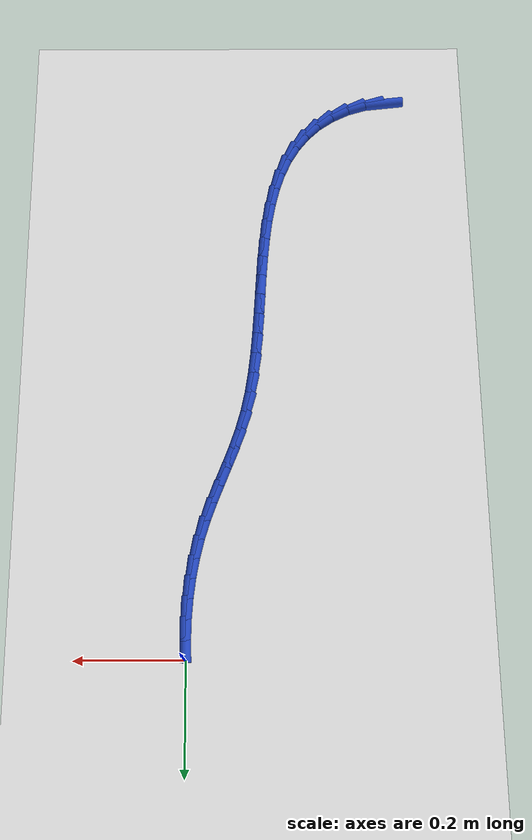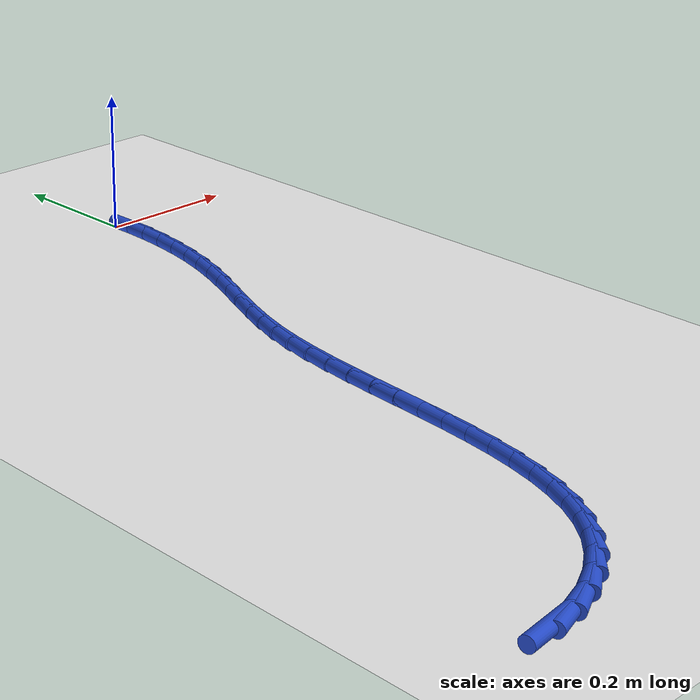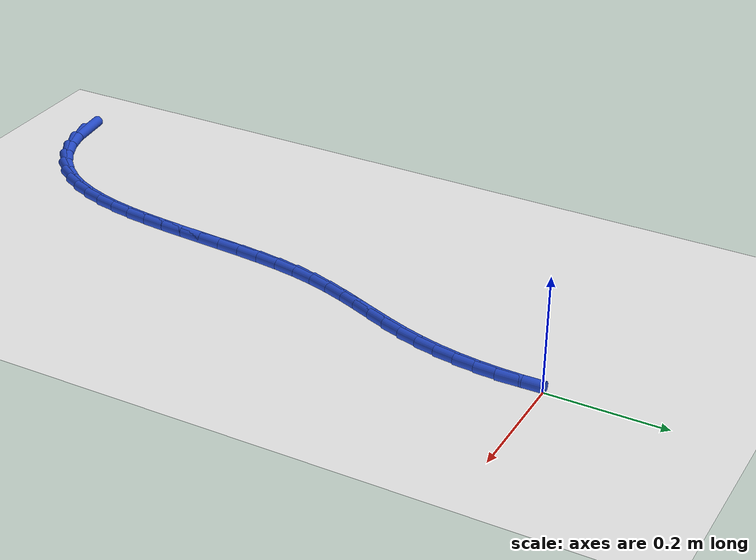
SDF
<sdf version="1.6">
 <world name="default">
  <model name="ground_plane">
   <static>1</static>
   <link name="link">
    <collision name="collision">
     <geometry><plane><normal>0 0 1</normal><size>100 100</size></plane></geometry>
     <surface><friction><ode><mu>100</mu><mu2>50</mu2></ode></friction></surface>
    </collision>
    <visual name="visual">
     <cast_shadows>0</cast_shadows>
     <geometry><plane><normal>0 0 1</normal><size>100 100</size></plane></geometry>
     <material>
      <script><uri>file://media/materials/scripts/gazebo.material</uri><name>Gazebo/WhiteGlow</name></script>
     </material>
    </visual>
   </link>
  </model>
  <model name="line">
   <link name="link_236">
    <pose>-0.39205179487891645 -1.1144672736299832 0.01 0 1.57 0.10989551636319063</pose>
    <collision name="collision">
     <geometry><cylinder><radius>0.01</radius><length>0.08</length></cylinder></geometry>
    </collision>
    <visual name="visual">
     <material>
      <script><name>Gazebo/Blue</name><uri>file://media/materials/scripts/gazebo.material</uri></script>
     </material>
     <geometry><cylinder><radius>0.01</radius><length>0.08</length></cylinder></geometry>
    </visual>
   </link>
   <link name="link_237">
    <pose>-0.3546578661381277 -1.1103412250032278 0.01 0 1.57 0.29479839669105695</pose>
    <collision name="collision">
     <geometry><cylinder><radius>0.01</radius><length>0.08</length></cylinder></geometry>
    </collision>
    <visual name="visual">
     <material>
      <script><name>Gazebo/Blue</name><uri>file://media/materials/scripts/gazebo.material</uri></script>
     </material>
     <geometry><cylinder><radius>0.01</radius><length>0.08</length></cylinder></geometry>
    </visual>
   </link>
   <link name="link_238">
    <pose>-0.3184992203152216 -1.0993617962897582 0.01 0 1.57 0.4531646331320332</pose>
    <collision name="collision">
     <geometry><cylinder><radius>0.01</radius><length>0.08</length></cylinder></geometry>
    </collision>
    <visual name="visual">
     <material>
      <script><name>Gazebo/Blue</name><uri>file://media/materials/scripts/gazebo.material</uri></script>
     </material>
     <geometry><cylinder><radius>0.01</radius><length>0.08</length></cylinder></geometry>
    </visual>
   </link>
   <link name="link_239">
    <pose>-0.2852480133200984 -1.0831696512039333 0.01 0 1.57 0.6033523680299203</pose>
    <collision name="collision">
     <geometry><cylinder><radius>0.01</radius><length>0.08</length></cylinder></geometry>
    </collision>
    <visual name="visual">
     <material>
      <script><name>Gazebo/Blue</name><uri>file://media/materials/scripts/gazebo.material</uri></script>
     </material>
     <geometry><cylinder><radius>0.01</radius><length>0.08</length></cylinder></geometry>
    </visual>
   </link>
   <link name="link_240">
    <pose>-0.2562854922342729 -1.0632124595144499 0.01 0 1.57 0.7545182892537138</pose>
    <collision name="collision">
     <geometry><cylinder><radius>0.01</radius><length>0.08</length></cylinder></geometry>
    </collision>
    <visual name="visual">
     <material>
      <script><name>Gazebo/Blue</name><uri>file://media/materials/scripts/gazebo.material</uri></script>
     </material>
     <geometry><cylinder><radius>0.01</radius><length>0.08</length></cylinder></geometry>
    </visual>
   </link>
   <link name="link_241">
    <pose>-0.23162707118367243 -1.0400317737962468 0.01 0 1.57 0.8998769247001551</pose>
    <collision name="collision">
     <geometry><cylinder><radius>0.01</radius><length>0.08</length></cylinder></geometry>
    </collision>
    <visual name="visual">
     <material>
      <script><name>Gazebo/Blue</name><uri>file://media/materials/scripts/gazebo.material</uri></script>
     </material>
     <geometry><cylinder><radius>0.01</radius><length>0.08</length></cylinder></geometry>
    </visual>
   </link>
   <link name="link_242">
    <pose>-0.2108876699252556 -1.0139034517365797 0.01 0 1.57 1.0322827769955236</pose>
    <collision name="collision">
     <geometry><cylinder><radius>0.01</radius><length>0.08</length></cylinder></geometry>
    </collision>
    <visual name="visual">
     <material>
      <script><name>Gazebo/Blue</name><uri>file://media/materials/scripts/gazebo.material</uri></script>
     </material>
     <geometry><cylinder><radius>0.01</radius><length>0.08</length></cylinder></geometry>
    </visual>
   </link>
   <link name="link_243">
    <pose>-0.1936821562458956 -0.9851033165448551 0.01 0 1.57 1.14744929861564</pose>
    <collision name="collision">
     <geometry><cylinder><radius>0.01</radius><length>0.08</length></cylinder></geometry>
    </collision>
    <visual name="visual">
     <material>
      <script><name>Gazebo/Blue</name><uri>file://media/materials/scripts/gazebo.material</uri></script>
     </material>
     <geometry><cylinder><radius>0.01</radius><length>0.08</length></cylinder></geometry>
    </visual>
   </link>
   <link name="link_244">
    <pose>-0.17962539793246324 -0.9539071914304734 0.01 0 1.57 1.2439837563374745</pose>
    <collision name="collision">
     <geometry><cylinder><radius>0.01</radius><length>0.08</length></cylinder></geometry>
    </collision>
    <visual name="visual">
     <material>
      <script><name>Gazebo/Blue</name><uri>file://media/materials/scripts/gazebo.material</uri></script>
     </material>
     <geometry><cylinder><radius>0.01</radius><length>0.08</length></cylinder></geometry>
    </visual>
   </link>
   <link name="link_245">
    <pose>-0.16833226277183125 -0.9205908996028394 0.01 0 1.57 1.322488236796109</pose>
    <collision name="collision">
     <geometry><cylinder><radius>0.01</radius><length>0.08</length></cylinder></geometry>
    </collision>
    <visual name="visual">
     <material>
      <script><name>Gazebo/Blue</name><uri>file://media/materials/scripts/gazebo.material</uri></script>
     </material>
     <geometry><cylinder><radius>0.01</radius><length>0.08</length></cylinder></geometry>
    </visual>
   </link>
   <link name="link_246">
    <pose>-0.15941761855087108 -0.885430264271357 0.01 0 1.57 1.3845393148437959</pose>
    <collision name="collision">
     <geometry><cylinder><radius>0.01</radius><length>0.08</length></cylinder></geometry>
    </collision>
    <visual name="visual">
     <material>
      <script><name>Gazebo/Blue</name><uri>file://media/materials/scripts/gazebo.material</uri></script>
     </material>
     <geometry><cylinder><radius>0.01</radius><length>0.08</length></cylinder></geometry>
    </visual>
   </link>
   <link name="link_247">
    <pose>-0.1524963330564545 -0.848701108645427 0.01 0 1.57 1.431958355715089</pose>
    <collision name="collision">
     <geometry><cylinder><radius>0.01</radius><length>0.08</length></cylinder></geometry>
    </collision>
    <visual name="visual">
     <material>
      <script><name>Gazebo/Blue</name><uri>file://media/materials/scripts/gazebo.material</uri></script>
     </material>
     <geometry><cylinder><radius>0.01</radius><length>0.08</length></cylinder></geometry>
    </visual>
   </link>
   <link name="link_248">
    <pose>-0.14718327407545376 -0.8106792559344557 0.01 0 1.57 1.4664102754979609</pose>
    <collision name="collision">
     <geometry><cylinder><radius>0.01</radius><length>0.08</length></cylinder></geometry>
    </collision>
    <visual name="visual">
     <material>
      <script><name>Gazebo/Blue</name><uri>file://media/materials/scripts/gazebo.material</uri></script>
     </material>
     <geometry><cylinder><radius>0.01</radius><length>0.08</length></cylinder></geometry>
    </visual>
   </link>
   <link name="link_249">
    <pose>-0.14309330939474044 -0.7716405293478436 0.01 0 1.57 1.4892275685575231</pose>
    <collision name="collision">
     <geometry><cylinder><radius>0.01</radius><length>0.08</length></cylinder></geometry>
    </collision>
    <visual name="visual">
     <material>
      <script><name>Gazebo/Blue</name><uri>file://media/materials/scripts/gazebo.material</uri></script>
     </material>
     <geometry><cylinder><radius>0.01</radius><length>0.08</length></cylinder></geometry>
    </visual>
   </link>
   <link name="link_250">
    <pose>-0.13984130680118662 -0.7318607520949962 0.01 0 1.57 1.5013548649248607</pose>
    <collision name="collision">
     <geometry><cylinder><radius>0.01</radius><length>0.08</length></cylinder></geometry>
    </collision>
    <visual name="visual">
     <material>
      <script><name>Gazebo/Blue</name><uri>file://media/materials/scripts/gazebo.material</uri></script>
     </material>
     <geometry><cylinder><radius>0.01</radius><length>0.08</length></cylinder></geometry>
    </visual>
   </link>
   <link name="link_251">
    <pose>-0.1370421340816641 -0.691615747385315 0.01 0 1.57 1.5033455714844528</pose>
    <collision name="collision">
     <geometry><cylinder><radius>0.01</radius><length>0.08</length></cylinder></geometry>
    </collision>
    <visual name="visual">
     <material>
      <script><name>Gazebo/Blue</name><uri>file://media/materials/scripts/gazebo.material</uri></script>
     </material>
     <geometry><cylinder><radius>0.01</radius><length>0.08</length></cylinder></geometry>
    </visual>
   </link>
   <link name="link_252">
    <pose>-0.13431065902304487 -0.6511813384282052 0.01 0 1.57 1.4953743243920228</pose>
    <collision name="collision">
     <geometry><cylinder><radius>0.01</radius><length>0.08</length></cylinder></geometry>
    </collision>
    <visual name="visual">
     <material>
      <script><name>Gazebo/Blue</name><uri>file://media/materials/scripts/gazebo.material</uri></script>
     </material>
     <geometry><cylinder><radius>0.01</radius><length>0.08</length></cylinder></geometry>
    </visual>
   </link>
   <link name="link_253">
    <pose>-0.13126174941220065 -0.6108333484330681 0.01 0 1.57 1.477249820906474</pose>
    <collision name="collision">
     <geometry><cylinder><radius>0.01</radius><length>0.08</length></cylinder></geometry>
    </collision>
    <visual name="visual">
     <material>
      <script><name>Gazebo/Blue</name><uri>file://media/materials/scripts/gazebo.material</uri></script>
     </material>
     <geometry><cylinder><radius>0.01</radius><length>0.08</length></cylinder></geometry>
    </visual>
   </link>
   <link name="link_254">
    <pose>-0.12751027303600354 -0.5708476006093092 0.01 0 1.57 1.448425806038845</pose>
    <collision name="collision">
     <geometry><cylinder><radius>0.01</radius><length>0.08</length></cylinder></geometry>
    </collision>
    <visual name="visual">
     <material>
      <script><name>Gazebo/Blue</name><uri>file://media/materials/scripts/gazebo.material</uri></script>
     </material>
     <geometry><cylinder><radius>0.01</radius><length>0.08</length></cylinder></geometry>
    </visual>
   </link>
   <link name="link_255">
    <pose>-0.12267109768132514 -0.5314999181663291 0.01 0 1.57 1.4080187701132703</pose>
    <collision name="collision">
     <geometry><cylinder><radius>0.01</radius><length>0.08</length></cylinder></geometry>
    </collision>
    <visual name="visual">
     <material>
      <script><name>Gazebo/Blue</name><uri>file://media/materials/scripts/gazebo.material</uri></script>
     </material>
     <geometry><cylinder><radius>0.01</radius><length>0.08</length></cylinder></geometry>
    </visual>
   </link>
   <link name="link_256">
    <pose>-0.11635909113503771 -0.493066124313534 0.01 0 1.57 1.3548537882387663</pose>
    <collision name="collision">
     <geometry><cylinder><radius>0.01</radius><length>0.08</length></cylinder></geometry>
    </collision>
    <visual name="visual">
     <material>
      <script><name>Gazebo/Blue</name><uri>file://media/materials/scripts/gazebo.material</uri></script>
     </material>
     <geometry><cylinder><radius>0.01</radius><length>0.08</length></cylinder></geometry>
    </visual>
   </link>
   <link name="link_257">
    <pose>-0.10818912118401297 -0.4558220422603255 0.01 0 1.57 1.2904310737481333</pose>
    <collision name="collision">
     <geometry><cylinder><radius>0.01</radius><length>0.08</length></cylinder></geometry>
    </collision>
    <visual name="visual">
     <material>
      <script><name>Gazebo/Blue</name><uri>file://media/materials/scripts/gazebo.material</uri></script>
     </material>
     <geometry><cylinder><radius>0.01</radius><length>0.08</length></cylinder></geometry>
    </visual>
   </link>
   <link name="link_258">
    <pose>-0.0978698929102056 -0.41998514472430687 0.01 0 1.57 1.2351472159140904</pose>
    <collision name="collision">
     <geometry><cylinder><radius>0.01</radius><length>0.08</length></cylinder></geometry>
    </collision>
    <visual name="visual">
     <material>
      <script><name>Gazebo/Blue</name><uri>file://media/materials/scripts/gazebo.material</uri></script>
     </material>
     <geometry><cylinder><radius>0.01</radius><length>0.08</length></cylinder></geometry>
    </visual>
   </link>
   <link name="link_259">
    <pose>-0.08578794679003021 -0.3853514085925556 0.01 0 1.57 1.199694075810335</pose>
    <collision name="collision">
     <geometry><cylinder><radius>0.01</radius><length>0.08</length></cylinder></geometry>
    </collision>
    <visual name="visual">
     <material>
      <script><name>Gazebo/Blue</name><uri>file://media/materials/scripts/gazebo.material</uri></script>
     </material>
     <geometry><cylinder><radius>0.01</radius><length>0.08</length></cylinder></geometry>
    </visual>
   </link>
   <link name="link_260">
    <pose>-0.0726276018344988 -0.3515316442474442 0.01 0 1.57 1.1852707173224264</pose>
    <collision name="collision">
     <geometry><cylinder><radius>0.01</radius><length>0.08</length></cylinder></geometry>
    </collision>
    <visual name="visual">
     <material>
      <script><name>Gazebo/Blue</name><uri>file://media/materials/scripts/gazebo.material</uri></script>
     </material>
     <geometry><cylinder><radius>0.01</radius><length>0.08</length></cylinder></geometry>
    </visual>
   </link>
   <link name="link_261">
    <pose>-0.05907445719458854 -0.3181358660467372 0.01 0 1.57 1.1924718654744093</pose>
    <collision name="collision">
     <geometry><cylinder><radius>0.01</radius><length>0.08</length></cylinder></geometry>
    </collision>
    <visual name="visual">
     <material>
      <script><name>Gazebo/Blue</name><uri>file://media/materials/scripts/gazebo.material</uri></script>
     </material>
     <geometry><cylinder><radius>0.01</radius><length>0.08</length></cylinder></geometry>
    </visual>
   </link>
   <link name="link_262">
    <pose>-0.04581411202127488 -0.28477408834819506 0.01 0 1.57 1.221476875534865</pose>
    <collision name="collision">
     <geometry><cylinder><radius>0.01</radius><length>0.08</length></cylinder></geometry>
    </collision>
    <visual name="visual">
     <material>
      <script><name>Gazebo/Blue</name><uri>file://media/materials/scripts/gazebo.material</uri></script>
     </material>
     <geometry><cylinder><radius>0.01</radius><length>0.08</length></cylinder></geometry>
    </visual>
   </link>
   <link name="link_263">
    <pose>-0.033532165465534954 -0.25105632550958196 0.01 0 1.57 1.2716611716802118</pose>
    <collision name="collision">
     <geometry><cylinder><radius>0.01</radius><length>0.08</length></cylinder></geometry>
    </collision>
    <visual name="visual">
     <material>
      <script><name>Gazebo/Blue</name><uri>file://media/materials/scripts/gazebo.material</uri></script>
     </material>
     <geometry><cylinder><radius>0.01</radius><length>0.08</length></cylinder></geometry>
    </visual>
   </link>
   <link name="link_264">
    <pose>-0.02290607036545697 -0.21659952425651396 0.01 0 1.57 1.3318457399891979</pose>
    <collision name="collision">
     <geometry><cylinder><radius>0.01</radius><length>0.08</length></cylinder></geometry>
    </collision>
    <visual name="visual">
     <material>
      <script><name>Gazebo/Blue</name><uri>file://media/materials/scripts/gazebo.material</uri></script>
     </material>
     <geometry><cylinder><radius>0.01</radius><length>0.08</length></cylinder></geometry>
    </visual>
   </link>
   <link name="link_265">
    <pose>-0.014303170431161897 -0.18128452868513276 0.01 0 1.57 1.3889356278603957</pose>
    <collision name="collision">
     <geometry><cylinder><radius>0.01</radius><length>0.08</length></cylinder></geometry>
    </collision>
    <visual name="visual">
     <material>
      <script><name>Gazebo/Blue</name><uri>file://media/materials/scripts/gazebo.material</uri></script>
     </material>
     <geometry><cylinder><radius>0.01</radius><length>0.08</length></cylinder></geometry>
    </visual>
   </link>
   <link name="link_266">
    <pose>-0.007691731787067605 -0.14533179084246362 0.01 0 1.57 1.442798192655906</pose>
    <collision name="collision">
     <geometry><cylinder><radius>0.01</radius><length>0.08</length></cylinder></geometry>
    </collision>
    <visual name="visual">
     <material>
      <script><name>Gazebo/Blue</name><uri>file://media/materials/scripts/gazebo.material</uri></script>
     </material>
     <geometry><cylinder><radius>0.01</radius><length>0.08</length></cylinder></geometry>
    </visual>
   </link>
   <link name="link_267">
    <pose>-0.0030137249275394534 -0.10898413989056269 0.01 0 1.57 1.4941624524265855</pose>
    <collision name="collision">
     <geometry><cylinder><radius>0.01</radius><length>0.08</length></cylinder></geometry>
    </collision>
    <visual name="visual">
     <material>
      <script><name>Gazebo/Blue</name><uri>file://media/materials/scripts/gazebo.material</uri></script>
     </material>
     <geometry><cylinder><radius>0.01</radius><length>0.08</length></cylinder></geometry>
    </visual>
   </link>
   <link name="link_268">
    <pose>-0.00021112034694215987 -0.07248440499148262 0.01 0 1.57 1.543742803951699</pose>
    <collision name="collision">
     <geometry><cylinder><radius>0.01</radius><length>0.08</length></cylinder></geometry>
    </collision>
    <visual name="visual">
     <material>
      <script><name>Gazebo/Blue</name><uri>file://media/materials/scripts/gazebo.material</uri></script>
     </material>
     <geometry><cylinder><radius>0.01</radius><length>0.08</length></cylinder></geometry>
    </visual>
   </link>
   <link name="link_269">
    <pose>0.0007741114603593189 -0.03607541530727626 0.01 0 1.57 -1.5493414752603907</pose>
    <collision name="collision">
     <geometry><cylinder><radius>0.01</radius><length>0.08</length></cylinder></geometry>
    </collision>
    <visual name="visual">
     <material>
      <script><name>Gazebo/Blue</name><uri>file://media/materials/scripts/gazebo.material</uri></script>
     </material>
     <geometry><cylinder><radius>0.01</radius><length>0.08</length></cylinder></geometry>
    </visual>
   </link>
  </model>
 </world>
</sdf>
